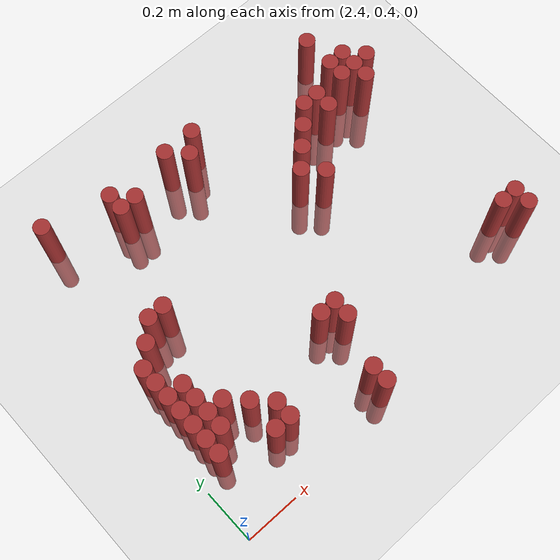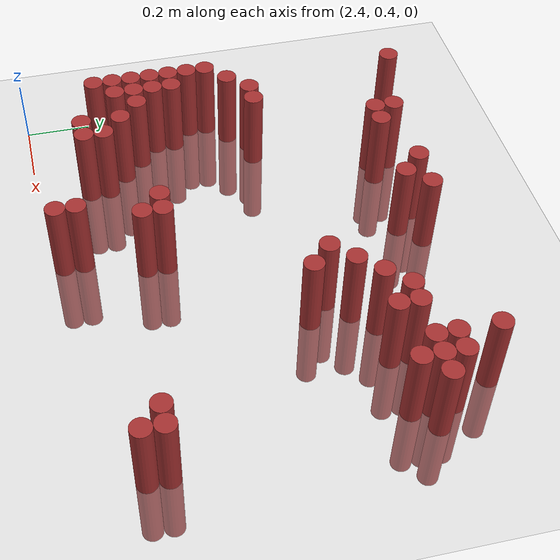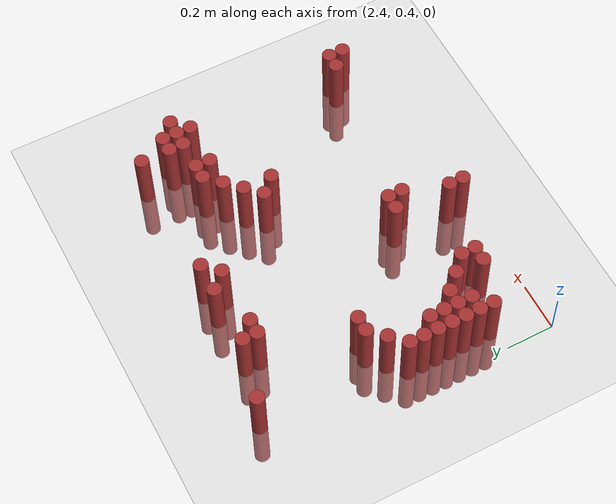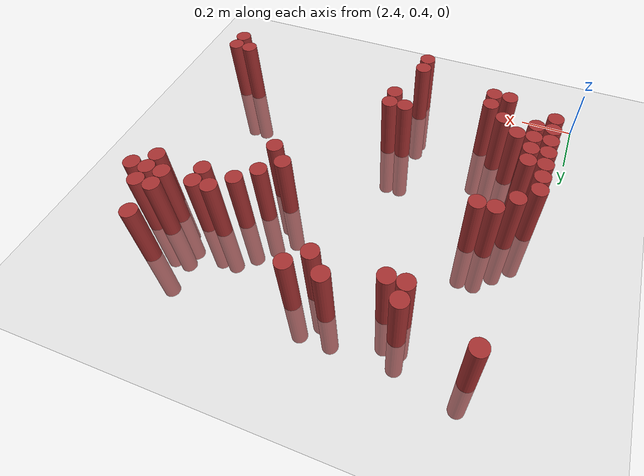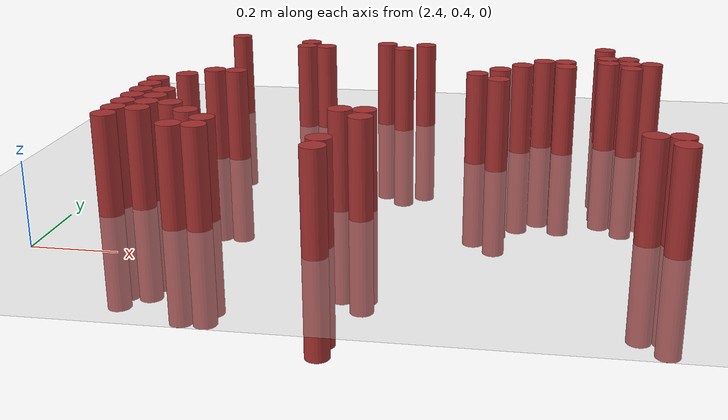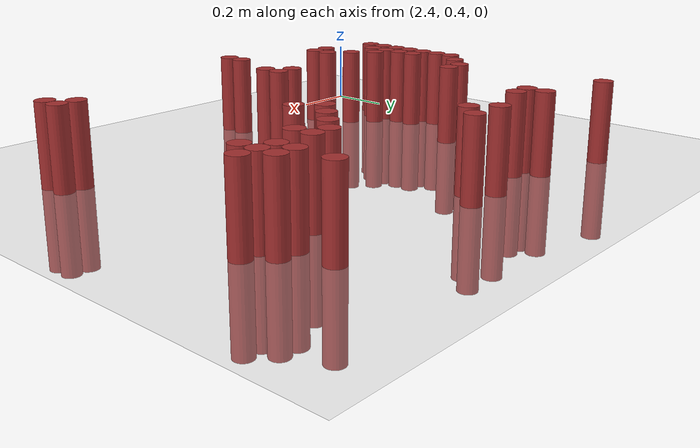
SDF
<sdf version="1.6">
 <world name="default">
  <model name="ground_plane">
   <static>1</static>
   <link name="link">
    <collision name="collision">
     <geometry><plane><normal>0 0 1</normal><size>100 100</size></plane></geometry>
     <surface><friction><ode><mu>100</mu><mu2>50</mu2></ode></friction></surface>
    </collision>
    <visual name="visual">
     <cast_shadows>0</cast_shadows>
     <geometry><plane><normal>0 0 1</normal><size>100 100</size></plane></geometry>
     <material>
      <script><uri>file://media/materials/scripts/gazebo.material</uri><name>Gazebo/Grey</name></script>
     </material>
    </visual>
   </link>
  </model>
  <model name="unit_cylinder_151">
   <static>1</static>
   <pose>2.550000 1.590000 0.000000 0.000000 0.000000 0.000000</pose>
   <link name="link">
    <inertial>
     <mass>1</mass>
     <inertia><ixx>0.145833</ixx><ixy>0</ixy><ixz>0</ixz><iyy>0.145833</iyy><iyz>0</iyz><izz>0.125</izz></inertia>
    </inertial>
    <collision name="collision">
     <geometry><cylinder><radius>0.030000</radius><length>0.5</length></cylinder></geometry>
    </collision>
    <visual name="visual">
     <geometry><cylinder><radius>0.030000</radius><length>0.5</length></cylinder></geometry>
     <material>
      <ambient>0.648000 0.192000 0.192000 1</ambient>
      <diffuse>0.648000 0.192000 0.192000 1</diffuse>
     </material>
     <material>
      <script><name>Gazebo/Grey</name><uri>file://media/materials/scripts/gazebo.material</uri></script>
     </material>
    </visual>
   </link>
  </model>
  <model name="unit_cylinder_160">
   <static>1</static>
   <pose>2.790000 1.530000 0.000000 0.000000 0.000000 0.000000</pose>
   <link name="link">
    <inertial>
     <mass>1</mass>
     <inertia><ixx>0.145833</ixx><ixy>0</ixy><ixz>0</ixz><iyy>0.145833</iyy><iyz>0</iyz><izz>0.125</izz></inertia>
    </inertial>
    <collision name="collision">
     <geometry><cylinder><radius>0.030000</radius><length>0.5</length></cylinder></geometry>
    </collision>
    <visual name="visual">
     <geometry><cylinder><radius>0.030000</radius><length>0.5</length></cylinder></geometry>
     <material>
      <ambient>0.648000 0.192000 0.192000 1</ambient>
      <diffuse>0.648000 0.192000 0.192000 1</diffuse>
     </material>
     <material>
      <script><name>Gazebo/Grey</name><uri>file://media/materials/scripts/gazebo.material</uri></script>
     </material>
    </visual>
   </link>
  </model>
  <model name="unit_cylinder_161">
   <static>1</static>
   <pose>3.030000 1.530000 0.000000 0.000000 0.000000 0.000000</pose>
   <link name="link">
    <inertial>
     <mass>1</mass>
     <inertia><ixx>0.145833</ixx><ixy>0</ixy><ixz>0</ixz><iyy>0.145833</iyy><iyz>0</iyz><izz>0.125</izz></inertia>
    </inertial>
    <collision name="collision">
     <geometry><cylinder><radius>0.030000</radius><length>0.5</length></cylinder></geometry>
    </collision>
    <visual name="visual">
     <geometry><cylinder><radius>0.030000</radius><length>0.5</length></cylinder></geometry>
     <material>
      <ambient>0.648000 0.192000 0.192000 1</ambient>
      <diffuse>0.648000 0.192000 0.192000 1</diffuse>
     </material>
     <material>
      <script><name>Gazebo/Grey</name><uri>file://media/materials/scripts/gazebo.material</uri></script>
     </material>
    </visual>
   </link>
  </model>
  <model name="unit_cylinder_162">
   <static>1</static>
   <pose>3.150000 1.530000 0.000000 0.000000 0.000000 0.000000</pose>
   <link name="link">
    <inertial>
     <mass>1</mass>
     <inertia><ixx>0.145833</ixx><ixy>0</ixy><ixz>0</ixz><iyy>0.145833</iyy><iyz>0</iyz><izz>0.125</izz></inertia>
    </inertial>
    <collision name="collision">
     <geometry><cylinder><radius>0.030000</radius><length>0.5</length></cylinder></geometry>
    </collision>
    <visual name="visual">
     <geometry><cylinder><radius>0.030000</radius><length>0.5</length></cylinder></geometry>
     <material>
      <ambient>0.648000 0.192000 0.192000 1</ambient>
      <diffuse>0.648000 0.192000 0.192000 1</diffuse>
     </material>
     <material>
      <script><name>Gazebo/Grey</name><uri>file://media/materials/scripts/gazebo.material</uri></script>
     </material>
    </visual>
   </link>
  </model>
  <model name="unit_cylinder_163">
   <static>1</static>
   <pose>3.690000 1.530000 0.000000 0.000000 0.000000 0.000000</pose>
   <link name="link">
    <inertial>
     <mass>1</mass>
     <inertia><ixx>0.145833</ixx><ixy>0</ixy><ixz>0</ixz><iyy>0.145833</iyy><iyz>0</iyz><izz>0.125</izz></inertia>
    </inertial>
    <collision name="collision">
     <geometry><cylinder><radius>0.030000</radius><length>0.5</length></cylinder></geometry>
    </collision>
    <visual name="visual">
     <geometry><cylinder><radius>0.030000</radius><length>0.5</length></cylinder></geometry>
     <material>
      <ambient>0.648000 0.192000 0.192000 1</ambient>
      <diffuse>0.648000 0.192000 0.192000 1</diffuse>
     </material>
     <material>
      <script><name>Gazebo/Grey</name><uri>file://media/materials/scripts/gazebo.material</uri></script>
     </material>
    </visual>
   </link>
  </model>
  <model name="unit_cylinder_166">
   <static>1</static>
   <pose>2.790000 1.470000 0.000000 0.000000 0.000000 0.000000</pose>
   <link name="link">
    <inertial>
     <mass>1</mass>
     <inertia><ixx>0.145833</ixx><ixy>0</ixy><ixz>0</ixz><iyy>0.145833</iyy><iyz>0</iyz><izz>0.125</izz></inertia>
    </inertial>
    <collision name="collision">
     <geometry><cylinder><radius>0.030000</radius><length>0.5</length></cylinder></geometry>
    </collision>
    <visual name="visual">
     <geometry><cylinder><radius>0.030000</radius><length>0.5</length></cylinder></geometry>
     <material>
      <ambient>0.648000 0.192000 0.192000 1</ambient>
      <diffuse>0.648000 0.192000 0.192000 1</diffuse>
     </material>
     <material>
      <script><name>Gazebo/Grey</name><uri>file://media/materials/scripts/gazebo.material</uri></script>
     </material>
    </visual>
   </link>
  </model>
  <model name="unit_cylinder_167">
   <static>1</static>
   <pose>2.850000 1.470000 0.000000 0.000000 0.000000 0.000000</pose>
   <link name="link">
    <inertial>
     <mass>1</mass>
     <inertia><ixx>0.145833</ixx><ixy>0</ixy><ixz>0</ixz><iyy>0.145833</iyy><iyz>0</iyz><izz>0.125</izz></inertia>
    </inertial>
    <collision name="collision">
     <geometry><cylinder><radius>0.030000</radius><length>0.5</length></cylinder></geometry>
    </collision>
    <visual name="visual">
     <geometry><cylinder><radius>0.030000</radius><length>0.5</length></cylinder></geometry>
     <material>
      <ambient>0.648000 0.192000 0.192000 1</ambient>
      <diffuse>0.648000 0.192000 0.192000 1</diffuse>
     </material>
     <material>
      <script><name>Gazebo/Grey</name><uri>file://media/materials/scripts/gazebo.material</uri></script>
     </material>
    </visual>
   </link>
  </model>
  <model name="unit_cylinder_168">
   <static>1</static>
   <pose>3.090000 1.470000 0.000000 0.000000 0.000000 0.000000</pose>
   <link name="link">
    <inertial>
     <mass>1</mass>
     <inertia><ixx>0.145833</ixx><ixy>0</ixy><ixz>0</ixz><iyy>0.145833</iyy><iyz>0</iyz><izz>0.125</izz></inertia>
    </inertial>
    <collision name="collision">
     <geometry><cylinder><radius>0.030000</radius><length>0.5</length></cylinder></geometry>
    </collision>
    <visual name="visual">
     <geometry><cylinder><radius>0.030000</radius><length>0.5</length></cylinder></geometry>
     <material>
      <ambient>0.648000 0.192000 0.192000 1</ambient>
      <diffuse>0.648000 0.192000 0.192000 1</diffuse>
     </material>
     <material>
      <script><name>Gazebo/Grey</name><uri>file://media/materials/scripts/gazebo.material</uri></script>
     </material>
    </visual>
   </link>
  </model>
  <model name="unit_cylinder_171">
   <static>1</static>
   <pose>3.690000 1.410000 0.000000 0.000000 0.000000 0.000000</pose>
   <link name="link">
    <inertial>
     <mass>1</mass>
     <inertia><ixx>0.145833</ixx><ixy>0</ixy><ixz>0</ixz><iyy>0.145833</iyy><iyz>0</iyz><izz>0.125</izz></inertia>
    </inertial>
    <collision name="collision">
     <geometry><cylinder><radius>0.030000</radius><length>0.5</length></cylinder></geometry>
    </collision>
    <visual name="visual">
     <geometry><cylinder><radius>0.030000</radius><length>0.5</length></cylinder></geometry>
     <material>
      <ambient>0.648000 0.192000 0.192000 1</ambient>
      <diffuse>0.648000 0.192000 0.192000 1</diffuse>
     </material>
     <material>
      <script><name>Gazebo/Grey</name><uri>file://media/materials/scripts/gazebo.material</uri></script>
     </material>
    </visual>
   </link>
  </model>
  <model name="unit_cylinder_172">
   <static>1</static>
   <pose>3.750000 1.410000 0.000000 0.000000 0.000000 0.000000</pose>
   <link name="link">
    <inertial>
     <mass>1</mass>
     <inertia><ixx>0.145833</ixx><ixy>0</ixy><ixz>0</ixz><iyy>0.145833</iyy><iyz>0</iyz><izz>0.125</izz></inertia>
    </inertial>
    <collision name="collision">
     <geometry><cylinder><radius>0.030000</radius><length>0.5</length></cylinder></geometry>
    </collision>
    <visual name="visual">
     <geometry><cylinder><radius>0.030000</radius><length>0.5</length></cylinder></geometry>
     <material>
      <ambient>0.648000 0.192000 0.192000 1</ambient>
      <diffuse>0.648000 0.192000 0.192000 1</diffuse>
     </material>
     <material>
      <script><name>Gazebo/Grey</name><uri>file://media/materials/scripts/gazebo.material</uri></script>
     </material>
    </visual>
   </link>
  </model>
  <model name="unit_cylinder_173">
   <static>1</static>
   <pose>3.510000 1.350000 0.000000 0.000000 0.000000 0.000000</pose>
   <link name="link">
    <inertial>
     <mass>1</mass>
     <inertia><ixx>0.145833</ixx><ixy>0</ixy><ixz>0</ixz><iyy>0.145833</iyy><iyz>0</iyz><izz>0.125</izz></inertia>
    </inertial>
    <collision name="collision">
     <geometry><cylinder><radius>0.030000</radius><length>0.5</length></cylinder></geometry>
    </collision>
    <visual name="visual">
     <geometry><cylinder><radius>0.030000</radius><length>0.5</length></cylinder></geometry>
     <material>
      <ambient>0.648000 0.192000 0.192000 1</ambient>
      <diffuse>0.648000 0.192000 0.192000 1</diffuse>
     </material>
     <material>
      <script><name>Gazebo/Grey</name><uri>file://media/materials/scripts/gazebo.material</uri></script>
     </material>
    </visual>
   </link>
  </model>
  <model name="unit_cylinder_174">
   <static>1</static>
   <pose>3.570000 1.350000 0.000000 0.000000 0.000000 0.000000</pose>
   <link name="link">
    <inertial>
     <mass>1</mass>
     <inertia><ixx>0.145833</ixx><ixy>0</ixy><ixz>0</ixz><iyy>0.145833</iyy><iyz>0</iyz><izz>0.125</izz></inertia>
    </inertial>
    <collision name="collision">
     <geometry><cylinder><radius>0.030000</radius><length>0.5</length></cylinder></geometry>
    </collision>
    <visual name="visual">
     <geometry><cylinder><radius>0.030000</radius><length>0.5</length></cylinder></geometry>
     <material>
      <ambient>0.648000 0.192000 0.192000 1</ambient>
      <diffuse>0.648000 0.192000 0.192000 1</diffuse>
     </material>
     <material>
      <script><name>Gazebo/Grey</name><uri>file://media/materials/scripts/gazebo.material</uri></script>
     </material>
    </visual>
   </link>
  </model>
  <model name="unit_cylinder_175">
   <static>1</static>
   <pose>3.690000 1.350000 0.000000 0.000000 0.000000 0.000000</pose>
   <link name="link">
    <inertial>
     <mass>1</mass>
     <inertia><ixx>0.145833</ixx><ixy>0</ixy><ixz>0</ixz><iyy>0.145833</iyy><iyz>0</iyz><izz>0.125</izz></inertia>
    </inertial>
    <collision name="collision">
     <geometry><cylinder><radius>0.030000</radius><length>0.5</length></cylinder></geometry>
    </collision>
    <visual name="visual">
     <geometry><cylinder><radius>0.030000</radius><length>0.5</length></cylinder></geometry>
     <material>
      <ambient>0.648000 0.192000 0.192000 1</ambient>
      <diffuse>0.648000 0.192000 0.192000 1</diffuse>
     </material>
     <material>
      <script><name>Gazebo/Grey</name><uri>file://media/materials/scripts/gazebo.material</uri></script>
     </material>
    </visual>
   </link>
  </model>
  <model name="unit_cylinder_176">
   <static>1</static>
   <pose>3.750000 1.350000 0.000000 0.000000 0.000000 0.000000</pose>
   <link name="link">
    <inertial>
     <mass>1</mass>
     <inertia><ixx>0.145833</ixx><ixy>0</ixy><ixz>0</ixz><iyy>0.145833</iyy><iyz>0</iyz><izz>0.125</izz></inertia>
    </inertial>
    <collision name="collision">
     <geometry><cylinder><radius>0.030000</radius><length>0.5</length></cylinder></geometry>
    </collision>
    <visual name="visual">
     <geometry><cylinder><radius>0.030000</radius><length>0.5</length></cylinder></geometry>
     <material>
      <ambient>0.648000 0.192000 0.192000 1</ambient>
      <diffuse>0.648000 0.192000 0.192000 1</diffuse>
     </material>
     <material>
      <script><name>Gazebo/Grey</name><uri>file://media/materials/scripts/gazebo.material</uri></script>
     </material>
    </visual>
   </link>
  </model>
  <model name="unit_cylinder_177">
   <static>1</static>
   <pose>3.810000 1.350000 0.000000 0.000000 0.000000 0.000000</pose>
   <link name="link">
    <inertial>
     <mass>1</mass>
     <inertia><ixx>0.145833</ixx><ixy>0</ixy><ixz>0</ixz><iyy>0.145833</iyy><iyz>0</iyz><izz>0.125</izz></inertia>
    </inertial>
    <collision name="collision">
     <geometry><cylinder><radius>0.030000</radius><length>0.5</length></cylinder></geometry>
    </collision>
    <visual name="visual">
     <geometry><cylinder><radius>0.030000</radius><length>0.5</length></cylinder></geometry>
     <material>
      <ambient>0.648000 0.192000 0.192000 1</ambient>
      <diffuse>0.648000 0.192000 0.192000 1</diffuse>
     </material>
     <material>
      <script><name>Gazebo/Grey</name><uri>file://media/materials/scripts/gazebo.material</uri></script>
     </material>
    </visual>
   </link>
  </model>
  <model name="unit_cylinder_178">
   <static>1</static>
   <pose>3.450000 1.290000 0.000000 0.000000 0.000000 0.000000</pose>
   <link name="link">
    <inertial>
     <mass>1</mass>
     <inertia><ixx>0.145833</ixx><ixy>0</ixy><ixz>0</ixz><iyy>0.145833</iyy><iyz>0</iyz><izz>0.125</izz></inertia>
    </inertial>
    <collision name="collision">
     <geometry><cylinder><radius>0.030000</radius><length>0.5</length></cylinder></geometry>
    </collision>
    <visual name="visual">
     <geometry><cylinder><radius>0.030000</radius><length>0.5</length></cylinder></geometry>
     <material>
      <ambient>0.648000 0.192000 0.192000 1</ambient>
      <diffuse>0.648000 0.192000 0.192000 1</diffuse>
     </material>
     <material>
      <script><name>Gazebo/Grey</name><uri>file://media/materials/scripts/gazebo.material</uri></script>
     </material>
    </visual>
   </link>
  </model>
  <model name="unit_cylinder_179">
   <static>1</static>
   <pose>3.570000 1.290000 0.000000 0.000000 0.000000 0.000000</pose>
   <link name="link">
    <inertial>
     <mass>1</mass>
     <inertia><ixx>0.145833</ixx><ixy>0</ixy><ixz>0</ixz><iyy>0.145833</iyy><iyz>0</iyz><izz>0.125</izz></inertia>
    </inertial>
    <collision name="collision">
     <geometry><cylinder><radius>0.030000</radius><length>0.5</length></cylinder></geometry>
    </collision>
    <visual name="visual">
     <geometry><cylinder><radius>0.030000</radius><length>0.5</length></cylinder></geometry>
     <material>
      <ambient>0.648000 0.192000 0.192000 1</ambient>
      <diffuse>0.648000 0.192000 0.192000 1</diffuse>
     </material>
     <material>
      <script><name>Gazebo/Grey</name><uri>file://media/materials/scripts/gazebo.material</uri></script>
     </material>
    </visual>
   </link>
  </model>
  <model name="unit_cylinder_180">
   <static>1</static>
   <pose>3.750000 1.290000 0.000000 0.000000 0.000000 0.000000</pose>
   <link name="link">
    <inertial>
     <mass>1</mass>
     <inertia><ixx>0.145833</ixx><ixy>0</ixy><ixz>0</ixz><iyy>0.145833</iyy><iyz>0</iyz><izz>0.125</izz></inertia>
    </inertial>
    <collision name="collision">
     <geometry><cylinder><radius>0.030000</radius><length>0.5</length></cylinder></geometry>
    </collision>
    <visual name="visual">
     <geometry><cylinder><radius>0.030000</radius><length>0.5</length></cylinder></geometry>
     <material>
      <ambient>0.648000 0.192000 0.192000 1</ambient>
      <diffuse>0.648000 0.192000 0.192000 1</diffuse>
     </material>
     <material>
      <script><name>Gazebo/Grey</name><uri>file://media/materials/scripts/gazebo.material</uri></script>
     </material>
    </visual>
   </link>
  </model>
  <model name="unit_cylinder_181">
   <static>1</static>
   <pose>3.390000 1.230000 0.000000 0.000000 0.000000 0.000000</pose>
   <link name="link">
    <inertial>
     <mass>1</mass>
     <inertia><ixx>0.145833</ixx><ixy>0</ixy><ixz>0</ixz><iyy>0.145833</iyy><iyz>0</iyz><izz>0.125</izz></inertia>
    </inertial>
    <collision name="collision">
     <geometry><cylinder><radius>0.030000</radius><length>0.5</length></cylinder></geometry>
    </collision>
    <visual name="visual">
     <geometry><cylinder><radius>0.030000</radius><length>0.5</length></cylinder></geometry>
     <material>
      <ambient>0.648000 0.192000 0.192000 1</ambient>
      <diffuse>0.648000 0.192000 0.192000 1</diffuse>
     </material>
     <material>
      <script><name>Gazebo/Grey</name><uri>file://media/materials/scripts/gazebo.material</uri></script>
     </material>
    </visual>
   </link>
  </model>
  <model name="unit_cylinder_182">
   <static>1</static>
   <pose>3.330000 1.170000 0.000000 0.000000 0.000000 0.000000</pose>
   <link name="link">
    <inertial>
     <mass>1</mass>
     <inertia><ixx>0.145833</ixx><ixy>0</ixy><ixz>0</ixz><iyy>0.145833</iyy><iyz>0</iyz><izz>0.125</izz></inertia>
    </inertial>
    <collision name="collision">
     <geometry><cylinder><radius>0.030000</radius><length>0.5</length></cylinder></geometry>
    </collision>
    <visual name="visual">
     <geometry><cylinder><radius>0.030000</radius><length>0.5</length></cylinder></geometry>
     <material>
      <ambient>0.648000 0.192000 0.192000 1</ambient>
      <diffuse>0.648000 0.192000 0.192000 1</diffuse>
     </material>
     <material>
      <script><name>Gazebo/Grey</name><uri>file://media/materials/scripts/gazebo.material</uri></script>
     </material>
    </visual>
   </link>
  </model>
  <model name="unit_cylinder_183">
   <static>1</static>
   <pose>2.610000 1.110000 0.000000 0.000000 0.000000 0.000000</pose>
   <link name="link">
    <inertial>
     <mass>1</mass>
     <inertia><ixx>0.145833</ixx><ixy>0</ixy><ixz>0</ixz><iyy>0.145833</iyy><iyz>0</iyz><izz>0.125</izz></inertia>
    </inertial>
    <collision name="collision">
     <geometry><cylinder><radius>0.030000</radius><length>0.5</length></cylinder></geometry>
    </collision>
    <visual name="visual">
     <geometry><cylinder><radius>0.030000</radius><length>0.5</length></cylinder></geometry>
     <material>
      <ambient>0.648000 0.192000 0.192000 1</ambient>
      <diffuse>0.648000 0.192000 0.192000 1</diffuse>
     </material>
     <material>
      <script><name>Gazebo/Grey</name><uri>file://media/materials/scripts/gazebo.material</uri></script>
     </material>
    </visual>
   </link>
  </model>
  <model name="unit_cylinder_184">
   <static>1</static>
   <pose>2.670000 1.110000 0.000000 0.000000 0.000000 0.000000</pose>
   <link name="link">
    <inertial>
     <mass>1</mass>
     <inertia><ixx>0.145833</ixx><ixy>0</ixy><ixz>0</ixz><iyy>0.145833</iyy><iyz>0</iyz><izz>0.125</izz></inertia>
    </inertial>
    <collision name="collision">
     <geometry><cylinder><radius>0.030000</radius><length>0.5</length></cylinder></geometry>
    </collision>
    <visual name="visual">
     <geometry><cylinder><radius>0.030000</radius><length>0.5</length></cylinder></geometry>
     <material>
      <ambient>0.648000 0.192000 0.192000 1</ambient>
      <diffuse>0.648000 0.192000 0.192000 1</diffuse>
     </material>
     <material>
      <script><name>Gazebo/Grey</name><uri>file://media/materials/scripts/gazebo.material</uri></script>
     </material>
    </visual>
   </link>
  </model>
  <model name="unit_cylinder_185">
   <static>1</static>
   <pose>3.390000 1.110000 0.000000 0.000000 0.000000 0.000000</pose>
   <link name="link">
    <inertial>
     <mass>1</mass>
     <inertia><ixx>0.145833</ixx><ixy>0</ixy><ixz>0</ixz><iyy>0.145833</iyy><iyz>0</iyz><izz>0.125</izz></inertia>
    </inertial>
    <collision name="collision">
     <geometry><cylinder><radius>0.030000</radius><length>0.5</length></cylinder></geometry>
    </collision>
    <visual name="visual">
     <geometry><cylinder><radius>0.030000</radius><length>0.5</length></cylinder></geometry>
     <material>
      <ambient>0.648000 0.192000 0.192000 1</ambient>
      <diffuse>0.648000 0.192000 0.192000 1</diffuse>
     </material>
     <material>
      <script><name>Gazebo/Grey</name><uri>file://media/materials/scripts/gazebo.material</uri></script>
     </material>
    </visual>
   </link>
  </model>
  <model name="unit_cylinder_186">
   <static>1</static>
   <pose>2.550000 1.050000 0.000000 0.000000 0.000000 0.000000</pose>
   <link name="link">
    <inertial>
     <mass>1</mass>
     <inertia><ixx>0.145833</ixx><ixy>0</ixy><ixz>0</ixz><iyy>0.145833</iyy><iyz>0</iyz><izz>0.125</izz></inertia>
    </inertial>
    <collision name="collision">
     <geometry><cylinder><radius>0.030000</radius><length>0.5</length></cylinder></geometry>
    </collision>
    <visual name="visual">
     <geometry><cylinder><radius>0.030000</radius><length>0.5</length></cylinder></geometry>
     <material>
      <ambient>0.648000 0.192000 0.192000 1</ambient>
      <diffuse>0.648000 0.192000 0.192000 1</diffuse>
     </material>
     <material>
      <script><name>Gazebo/Grey</name><uri>file://media/materials/scripts/gazebo.material</uri></script>
     </material>
    </visual>
   </link>
  </model>
  <model name="unit_cylinder_189">
   <static>1</static>
   <pose>2.490000 0.990000 0.000000 0.000000 0.000000 0.000000</pose>
   <link name="link">
    <inertial>
     <mass>1</mass>
     <inertia><ixx>0.145833</ixx><ixy>0</ixy><ixz>0</ixz><iyy>0.145833</iyy><iyz>0</iyz><izz>0.125</izz></inertia>
    </inertial>
    <collision name="collision">
     <geometry><cylinder><radius>0.030000</radius><length>0.5</length></cylinder></geometry>
    </collision>
    <visual name="visual">
     <geometry><cylinder><radius>0.030000</radius><length>0.5</length></cylinder></geometry>
     <material>
      <ambient>0.648000 0.192000 0.192000 1</ambient>
      <diffuse>0.648000 0.192000 0.192000 1</diffuse>
     </material>
     <material>
      <script><name>Gazebo/Grey</name><uri>file://media/materials/scripts/gazebo.material</uri></script>
     </material>
    </visual>
   </link>
  </model>
  <model name="unit_cylinder_192">
   <static>1</static>
   <pose>2.490000 0.930000 0.000000 0.000000 0.000000 0.000000</pose>
   <link name="link">
    <inertial>
     <mass>1</mass>
     <inertia><ixx>0.145833</ixx><ixy>0</ixy><ixz>0</ixz><iyy>0.145833</iyy><iyz>0</iyz><izz>0.125</izz></inertia>
    </inertial>
    <collision name="collision">
     <geometry><cylinder><radius>0.030000</radius><length>0.5</length></cylinder></geometry>
    </collision>
    <visual name="visual">
     <geometry><cylinder><radius>0.030000</radius><length>0.5</length></cylinder></geometry>
     <material>
      <ambient>0.648000 0.192000 0.192000 1</ambient>
      <diffuse>0.648000 0.192000 0.192000 1</diffuse>
     </material>
     <material>
      <script><name>Gazebo/Grey</name><uri>file://media/materials/scripts/gazebo.material</uri></script>
     </material>
    </visual>
   </link>
  </model>
  <model name="unit_cylinder_197">
   <static>1</static>
   <pose>2.490000 0.870000 0.000000 0.000000 0.000000 0.000000</pose>
   <link name="link">
    <inertial>
     <mass>1</mass>
     <inertia><ixx>0.145833</ixx><ixy>0</ixy><ixz>0</ixz><iyy>0.145833</iyy><iyz>0</iyz><izz>0.125</izz></inertia>
    </inertial>
    <collision name="collision">
     <geometry><cylinder><radius>0.030000</radius><length>0.5</length></cylinder></geometry>
    </collision>
    <visual name="visual">
     <geometry><cylinder><radius>0.030000</radius><length>0.5</length></cylinder></geometry>
     <material>
      <ambient>0.648000 0.192000 0.192000 1</ambient>
      <diffuse>0.648000 0.192000 0.192000 1</diffuse>
     </material>
     <material>
      <script><name>Gazebo/Grey</name><uri>file://media/materials/scripts/gazebo.material</uri></script>
     </material>
    </visual>
   </link>
  </model>
  <model name="unit_cylinder_198">
   <static>1</static>
   <pose>2.550000 0.870000 0.000000 0.000000 0.000000 0.000000</pose>
   <link name="link">
    <inertial>
     <mass>1</mass>
     <inertia><ixx>0.145833</ixx><ixy>0</ixy><ixz>0</ixz><iyy>0.145833</iyy><iyz>0</iyz><izz>0.125</izz></inertia>
    </inertial>
    <collision name="collision">
     <geometry><cylinder><radius>0.030000</radius><length>0.5</length></cylinder></geometry>
    </collision>
    <visual name="visual">
     <geometry><cylinder><radius>0.030000</radius><length>0.5</length></cylinder></geometry>
     <material>
      <ambient>0.648000 0.192000 0.192000 1</ambient>
      <diffuse>0.648000 0.192000 0.192000 1</diffuse>
     </material>
     <material>
      <script><name>Gazebo/Grey</name><uri>file://media/materials/scripts/gazebo.material</uri></script>
     </material>
    </visual>
   </link>
  </model>
  <model name="unit_cylinder_202">
   <static>1</static>
   <pose>2.490000 0.810000 0.000000 0.000000 0.000000 0.000000</pose>
   <link name="link">
    <inertial>
     <mass>1</mass>
     <inertia><ixx>0.145833</ixx><ixy>0</ixy><ixz>0</ixz><iyy>0.145833</iyy><iyz>0</iyz><izz>0.125</izz></inertia>
    </inertial>
    <collision name="collision">
     <geometry><cylinder><radius>0.030000</radius><length>0.5</length></cylinder></geometry>
    </collision>
    <visual name="visual">
     <geometry><cylinder><radius>0.030000</radius><length>0.5</length></cylinder></geometry>
     <material>
      <ambient>0.648000 0.192000 0.192000 1</ambient>
      <diffuse>0.648000 0.192000 0.192000 1</diffuse>
     </material>
     <material>
      <script><name>Gazebo/Grey</name><uri>file://media/materials/scripts/gazebo.material</uri></script>
     </material>
    </visual>
   </link>
  </model>
  <model name="unit_cylinder_203">
   <static>1</static>
   <pose>2.550000 0.810000 0.000000 0.000000 0.000000 0.000000</pose>
   <link name="link">
    <inertial>
     <mass>1</mass>
     <inertia><ixx>0.145833</ixx><ixy>0</ixy><ixz>0</ixz><iyy>0.145833</iyy><iyz>0</iyz><izz>0.125</izz></inertia>
    </inertial>
    <collision name="collision">
     <geometry><cylinder><radius>0.030000</radius><length>0.5</length></cylinder></geometry>
    </collision>
    <visual name="visual">
     <geometry><cylinder><radius>0.030000</radius><length>0.5</length></cylinder></geometry>
     <material>
      <ambient>0.648000 0.192000 0.192000 1</ambient>
      <diffuse>0.648000 0.192000 0.192000 1</diffuse>
     </material>
     <material>
      <script><name>Gazebo/Grey</name><uri>file://media/materials/scripts/gazebo.material</uri></script>
     </material>
    </visual>
   </link>
  </model>
  <model name="unit_cylinder_205">
   <static>1</static>
   <pose>2.490000 0.750000 0.000000 0.000000 0.000000 0.000000</pose>
   <link name="link">
    <inertial>
     <mass>1</mass>
     <inertia><ixx>0.145833</ixx><ixy>0</ixy><ixz>0</ixz><iyy>0.145833</iyy><iyz>0</iyz><izz>0.125</izz></inertia>
    </inertial>
    <collision name="collision">
     <geometry><cylinder><radius>0.030000</radius><length>0.5</length></cylinder></geometry>
    </collision>
    <visual name="visual">
     <geometry><cylinder><radius>0.030000</radius><length>0.5</length></cylinder></geometry>
     <material>
      <ambient>0.648000 0.192000 0.192000 1</ambient>
      <diffuse>0.648000 0.192000 0.192000 1</diffuse>
     </material>
     <material>
      <script><name>Gazebo/Grey</name><uri>file://media/materials/scripts/gazebo.material</uri></script>
     </material>
    </visual>
   </link>
  </model>
  <model name="unit_cylinder_206">
   <static>1</static>
   <pose>2.550000 0.750000 0.000000 0.000000 0.000000 0.000000</pose>
   <link name="link">
    <inertial>
     <mass>1</mass>
     <inertia><ixx>0.145833</ixx><ixy>0</ixy><ixz>0</ixz><iyy>0.145833</iyy><iyz>0</iyz><izz>0.125</izz></inertia>
    </inertial>
    <collision name="collision">
     <geometry><cylinder><radius>0.030000</radius><length>0.5</length></cylinder></geometry>
    </collision>
    <visual name="visual">
     <geometry><cylinder><radius>0.030000</radius><length>0.5</length></cylinder></geometry>
     <material>
      <ambient>0.648000 0.192000 0.192000 1</ambient>
      <diffuse>0.648000 0.192000 0.192000 1</diffuse>
     </material>
     <material>
      <script><name>Gazebo/Grey</name><uri>file://media/materials/scripts/gazebo.material</uri></script>
     </material>
    </visual>
   </link>
  </model>
  <model name="unit_cylinder_207">
   <static>1</static>
   <pose>2.610000 0.750000 0.000000 0.000000 0.000000 0.000000</pose>
   <link name="link">
    <inertial>
     <mass>1</mass>
     <inertia><ixx>0.145833</ixx><ixy>0</ixy><ixz>0</ixz><iyy>0.145833</iyy><iyz>0</iyz><izz>0.125</izz></inertia>
    </inertial>
    <collision name="collision">
     <geometry><cylinder><radius>0.030000</radius><length>0.5</length></cylinder></geometry>
    </collision>
    <visual name="visual">
     <geometry><cylinder><radius>0.030000</radius><length>0.5</length></cylinder></geometry>
     <material>
      <ambient>0.648000 0.192000 0.192000 1</ambient>
      <diffuse>0.648000 0.192000 0.192000 1</diffuse>
     </material>
     <material>
      <script><name>Gazebo/Grey</name><uri>file://media/materials/scripts/gazebo.material</uri></script>
     </material>
    </visual>
   </link>
  </model>
  <model name="unit_cylinder_208">
   <static>1</static>
   <pose>3.030000 0.750000 0.000000 0.000000 0.000000 0.000000</pose>
   <link name="link">
    <inertial>
     <mass>1</mass>
     <inertia><ixx>0.145833</ixx><ixy>0</ixy><ixz>0</ixz><iyy>0.145833</iyy><iyz>0</iyz><izz>0.125</izz></inertia>
    </inertial>
    <collision name="collision">
     <geometry><cylinder><radius>0.030000</radius><length>0.5</length></cylinder></geometry>
    </collision>
    <visual name="visual">
     <geometry><cylinder><radius>0.030000</radius><length>0.5</length></cylinder></geometry>
     <material>
      <ambient>0.648000 0.192000 0.192000 1</ambient>
      <diffuse>0.648000 0.192000 0.192000 1</diffuse>
     </material>
     <material>
      <script><name>Gazebo/Grey</name><uri>file://media/materials/scripts/gazebo.material</uri></script>
     </material>
    </visual>
   </link>
  </model>
  <model name="unit_cylinder_209">
   <static>1</static>
   <pose>3.090000 0.750000 0.000000 0.000000 0.000000 0.000000</pose>
   <link name="link">
    <inertial>
     <mass>1</mass>
     <inertia><ixx>0.145833</ixx><ixy>0</ixy><ixz>0</ixz><iyy>0.145833</iyy><iyz>0</iyz><izz>0.125</izz></inertia>
    </inertial>
    <collision name="collision">
     <geometry><cylinder><radius>0.030000</radius><length>0.5</length></cylinder></geometry>
    </collision>
    <visual name="visual">
     <geometry><cylinder><radius>0.030000</radius><length>0.5</length></cylinder></geometry>
     <material>
      <ambient>0.648000 0.192000 0.192000 1</ambient>
      <diffuse>0.648000 0.192000 0.192000 1</diffuse>
     </material>
     <material>
      <script><name>Gazebo/Grey</name><uri>file://media/materials/scripts/gazebo.material</uri></script>
     </material>
    </visual>
   </link>
  </model>
  <model name="unit_cylinder_210">
   <static>1</static>
   <pose>2.490000 0.690000 0.000000 0.000000 0.000000 0.000000</pose>
   <link name="link">
    <inertial>
     <mass>1</mass>
     <inertia><ixx>0.145833</ixx><ixy>0</ixy><ixz>0</ixz><iyy>0.145833</iyy><iyz>0</iyz><izz>0.125</izz></inertia>
    </inertial>
    <collision name="collision">
     <geometry><cylinder><radius>0.030000</radius><length>0.5</length></cylinder></geometry>
    </collision>
    <visual name="visual">
     <geometry><cylinder><radius>0.030000</radius><length>0.5</length></cylinder></geometry>
     <material>
      <ambient>0.648000 0.192000 0.192000 1</ambient>
      <diffuse>0.648000 0.192000 0.192000 1</diffuse>
     </material>
     <material>
      <script><name>Gazebo/Grey</name><uri>file://media/materials/scripts/gazebo.material</uri></script>
     </material>
    </visual>
   </link>
  </model>
  <model name="unit_cylinder_211">
   <static>1</static>
   <pose>2.550000 0.690000 0.000000 0.000000 0.000000 0.000000</pose>
   <link name="link">
    <inertial>
     <mass>1</mass>
     <inertia><ixx>0.145833</ixx><ixy>0</ixy><ixz>0</ixz><iyy>0.145833</iyy><iyz>0</iyz><izz>0.125</izz></inertia>
    </inertial>
    <collision name="collision">
     <geometry><cylinder><radius>0.030000</radius><length>0.5</length></cylinder></geometry>
    </collision>
    <visual name="visual">
     <geometry><cylinder><radius>0.030000</radius><length>0.5</length></cylinder></geometry>
     <material>
      <ambient>0.648000 0.192000 0.192000 1</ambient>
      <diffuse>0.648000 0.192000 0.192000 1</diffuse>
     </material>
     <material>
      <script><name>Gazebo/Grey</name><uri>file://media/materials/scripts/gazebo.material</uri></script>
     </material>
    </visual>
   </link>
  </model>
  <model name="unit_cylinder_212">
   <static>1</static>
   <pose>2.670000 0.690000 0.000000 0.000000 0.000000 0.000000</pose>
   <link name="link">
    <inertial>
     <mass>1</mass>
     <inertia><ixx>0.145833</ixx><ixy>0</ixy><ixz>0</ixz><iyy>0.145833</iyy><iyz>0</iyz><izz>0.125</izz></inertia>
    </inertial>
    <collision name="collision">
     <geometry><cylinder><radius>0.030000</radius><length>0.5</length></cylinder></geometry>
    </collision>
    <visual name="visual">
     <geometry><cylinder><radius>0.030000</radius><length>0.5</length></cylinder></geometry>
     <material>
      <ambient>0.648000 0.192000 0.192000 1</ambient>
      <diffuse>0.648000 0.192000 0.192000 1</diffuse>
     </material>
     <material>
      <script><name>Gazebo/Grey</name><uri>file://media/materials/scripts/gazebo.material</uri></script>
     </material>
    </visual>
   </link>
  </model>
  <model name="unit_cylinder_213">
   <static>1</static>
   <pose>3.090000 0.690000 0.000000 0.000000 0.000000 0.000000</pose>
   <link name="link">
    <inertial>
     <mass>1</mass>
     <inertia><ixx>0.145833</ixx><ixy>0</ixy><ixz>0</ixz><iyy>0.145833</iyy><iyz>0</iyz><izz>0.125</izz></inertia>
    </inertial>
    <collision name="collision">
     <geometry><cylinder><radius>0.030000</radius><length>0.5</length></cylinder></geometry>
    </collision>
    <visual name="visual">
     <geometry><cylinder><radius>0.030000</radius><length>0.5</length></cylinder></geometry>
     <material>
      <ambient>0.648000 0.192000 0.192000 1</ambient>
      <diffuse>0.648000 0.192000 0.192000 1</diffuse>
     </material>
     <material>
      <script><name>Gazebo/Grey</name><uri>file://media/materials/scripts/gazebo.material</uri></script>
     </material>
    </visual>
   </link>
  </model>
  <model name="unit_cylinder_214">
   <static>1</static>
   <pose>2.490000 0.630000 0.000000 0.000000 0.000000 0.000000</pose>
   <link name="link">
    <inertial>
     <mass>1</mass>
     <inertia><ixx>0.145833</ixx><ixy>0</ixy><ixz>0</ixz><iyy>0.145833</iyy><iyz>0</iyz><izz>0.125</izz></inertia>
    </inertial>
    <collision name="collision">
     <geometry><cylinder><radius>0.030000</radius><length>0.5</length></cylinder></geometry>
    </collision>
    <visual name="visual">
     <geometry><cylinder><radius>0.030000</radius><length>0.5</length></cylinder></geometry>
     <material>
      <ambient>0.648000 0.192000 0.192000 1</ambient>
      <diffuse>0.648000 0.192000 0.192000 1</diffuse>
     </material>
     <material>
      <script><name>Gazebo/Grey</name><uri>file://media/materials/scripts/gazebo.material</uri></script>
     </material>
    </visual>
   </link>
  </model>
  <model name="unit_cylinder_215">
   <static>1</static>
   <pose>2.730000 0.630000 0.000000 0.000000 0.000000 0.000000</pose>
   <link name="link">
    <inertial>
     <mass>1</mass>
     <inertia><ixx>0.145833</ixx><ixy>0</ixy><ixz>0</ixz><iyy>0.145833</iyy><iyz>0</iyz><izz>0.125</izz></inertia>
    </inertial>
    <collision name="collision">
     <geometry><cylinder><radius>0.030000</radius><length>0.5</length></cylinder></geometry>
    </collision>
    <visual name="visual">
     <geometry><cylinder><radius>0.030000</radius><length>0.5</length></cylinder></geometry>
     <material>
      <ambient>0.648000 0.192000 0.192000 1</ambient>
      <diffuse>0.648000 0.192000 0.192000 1</diffuse>
     </material>
     <material>
      <script><name>Gazebo/Grey</name><uri>file://media/materials/scripts/gazebo.material</uri></script>
     </material>
    </visual>
   </link>
  </model>
  <model name="unit_cylinder_216">
   <static>1</static>
   <pose>3.750000 0.630000 0.000000 0.000000 0.000000 0.000000</pose>
   <link name="link">
    <inertial>
     <mass>1</mass>
     <inertia><ixx>0.145833</ixx><ixy>0</ixy><ixz>0</ixz><iyy>0.145833</iyy><iyz>0</iyz><izz>0.125</izz></inertia>
    </inertial>
    <collision name="collision">
     <geometry><cylinder><radius>0.030000</radius><length>0.5</length></cylinder></geometry>
    </collision>
    <visual name="visual">
     <geometry><cylinder><radius>0.030000</radius><length>0.5</length></cylinder></geometry>
     <material>
      <ambient>0.648000 0.192000 0.192000 1</ambient>
      <diffuse>0.648000 0.192000 0.192000 1</diffuse>
     </material>
     <material>
      <script><name>Gazebo/Grey</name><uri>file://media/materials/scripts/gazebo.material</uri></script>
     </material>
    </visual>
   </link>
  </model>
  <model name="unit_cylinder_217">
   <static>1</static>
   <pose>3.810000 0.630000 0.000000 0.000000 0.000000 0.000000</pose>
   <link name="link">
    <inertial>
     <mass>1</mass>
     <inertia><ixx>0.145833</ixx><ixy>0</ixy><ixz>0</ixz><iyy>0.145833</iyy><iyz>0</iyz><izz>0.125</izz></inertia>
    </inertial>
    <collision name="collision">
     <geometry><cylinder><radius>0.030000</radius><length>0.5</length></cylinder></geometry>
    </collision>
    <visual name="visual">
     <geometry><cylinder><radius>0.030000</radius><length>0.5</length></cylinder></geometry>
     <material>
      <ambient>0.648000 0.192000 0.192000 1</ambient>
      <diffuse>0.648000 0.192000 0.192000 1</diffuse>
     </material>
     <material>
      <script><name>Gazebo/Grey</name><uri>file://media/materials/scripts/gazebo.material</uri></script>
     </material>
    </visual>
   </link>
  </model>
  <model name="unit_cylinder_218">
   <static>1</static>
   <pose>2.670000 0.570000 0.000000 0.000000 0.000000 0.000000</pose>
   <link name="link">
    <inertial>
     <mass>1</mass>
     <inertia><ixx>0.145833</ixx><ixy>0</ixy><ixz>0</ixz><iyy>0.145833</iyy><iyz>0</iyz><izz>0.125</izz></inertia>
    </inertial>
    <collision name="collision">
     <geometry><cylinder><radius>0.030000</radius><length>0.5</length></cylinder></geometry>
    </collision>
    <visual name="visual">
     <geometry><cylinder><radius>0.030000</radius><length>0.5</length></cylinder></geometry>
     <material>
      <ambient>0.648000 0.192000 0.192000 1</ambient>
      <diffuse>0.648000 0.192000 0.192000 1</diffuse>
     </material>
     <material>
      <script><name>Gazebo/Grey</name><uri>file://media/materials/scripts/gazebo.material</uri></script>
     </material>
    </visual>
   </link>
  </model>
  <model name="unit_cylinder_219">
   <static>1</static>
   <pose>2.730000 0.570000 0.000000 0.000000 0.000000 0.000000</pose>
   <link name="link">
    <inertial>
     <mass>1</mass>
     <inertia><ixx>0.145833</ixx><ixy>0</ixy><ixz>0</ixz><iyy>0.145833</iyy><iyz>0</iyz><izz>0.125</izz></inertia>
    </inertial>
    <collision name="collision">
     <geometry><cylinder><radius>0.030000</radius><length>0.5</length></cylinder></geometry>
    </collision>
    <visual name="visual">
     <geometry><cylinder><radius>0.030000</radius><length>0.5</length></cylinder></geometry>
     <material>
      <ambient>0.648000 0.192000 0.192000 1</ambient>
      <diffuse>0.648000 0.192000 0.192000 1</diffuse>
     </material>
     <material>
      <script><name>Gazebo/Grey</name><uri>file://media/materials/scripts/gazebo.material</uri></script>
     </material>
    </visual>
   </link>
  </model>
  <model name="unit_cylinder_220">
   <static>1</static>
   <pose>3.810000 0.570000 0.000000 0.000000 0.000000 0.000000</pose>
   <link name="link">
    <inertial>
     <mass>1</mass>
     <inertia><ixx>0.145833</ixx><ixy>0</ixy><ixz>0</ixz><iyy>0.145833</iyy><iyz>0</iyz><izz>0.125</izz></inertia>
    </inertial>
    <collision name="collision">
     <geometry><cylinder><radius>0.030000</radius><length>0.5</length></cylinder></geometry>
    </collision>
    <visual name="visual">
     <geometry><cylinder><radius>0.030000</radius><length>0.5</length></cylinder></geometry>
     <material>
      <ambient>0.648000 0.192000 0.192000 1</ambient>
      <diffuse>0.648000 0.192000 0.192000 1</diffuse>
     </material>
     <material>
      <script><name>Gazebo/Grey</name><uri>file://media/materials/scripts/gazebo.material</uri></script>
     </material>
    </visual>
   </link>
  </model>
  <model name="unit_cylinder_221">
   <static>1</static>
   <pose>3.030000 0.510000 0.000000 0.000000 0.000000 0.000000</pose>
   <link name="link">
    <inertial>
     <mass>1</mass>
     <inertia><ixx>0.145833</ixx><ixy>0</ixy><ixz>0</ixz><iyy>0.145833</iyy><iyz>0</iyz><izz>0.125</izz></inertia>
    </inertial>
    <collision name="collision">
     <geometry><cylinder><radius>0.030000</radius><length>0.5</length></cylinder></geometry>
    </collision>
    <visual name="visual">
     <geometry><cylinder><radius>0.030000</radius><length>0.5</length></cylinder></geometry>
     <material>
      <ambient>0.648000 0.192000 0.192000 1</ambient>
      <diffuse>0.648000 0.192000 0.192000 1</diffuse>
     </material>
     <material>
      <script><name>Gazebo/Grey</name><uri>file://media/materials/scripts/gazebo.material</uri></script>
     </material>
    </visual>
   </link>
  </model>
  <model name="unit_cylinder_223">
   <static>1</static>
   <pose>3.030000 0.450000 0.000000 0.000000 0.000000 0.000000</pose>
   <link name="link">
    <inertial>
     <mass>1</mass>
     <inertia><ixx>0.145833</ixx><ixy>0</ixy><ixz>0</ixz><iyy>0.145833</iyy><iyz>0</iyz><izz>0.125</izz></inertia>
    </inertial>
    <collision name="collision">
     <geometry><cylinder><radius>0.030000</radius><length>0.5</length></cylinder></geometry>
    </collision>
    <visual name="visual">
     <geometry><cylinder><radius>0.030000</radius><length>0.5</length></cylinder></geometry>
     <material>
      <ambient>0.648000 0.192000 0.192000 1</ambient>
      <diffuse>0.648000 0.192000 0.192000 1</diffuse>
     </material>
     <material>
      <script><name>Gazebo/Grey</name><uri>file://media/materials/scripts/gazebo.material</uri></script>
     </material>
    </visual>
   </link>
  </model>
 </world>
</sdf>
